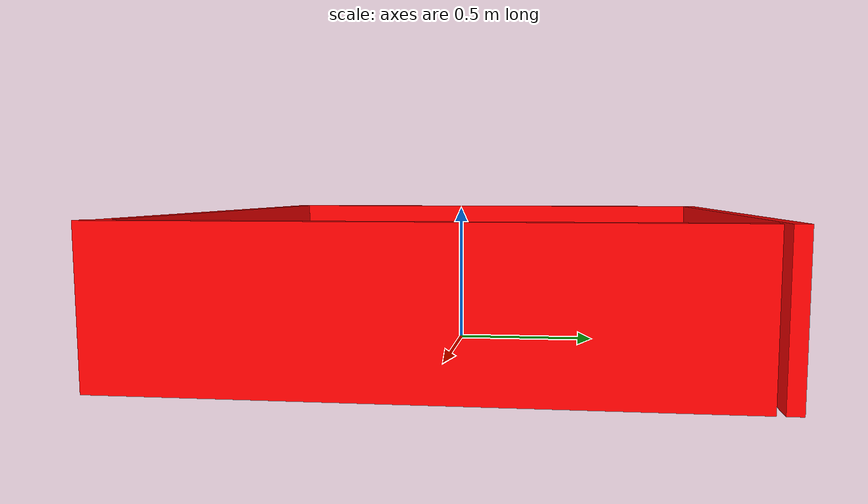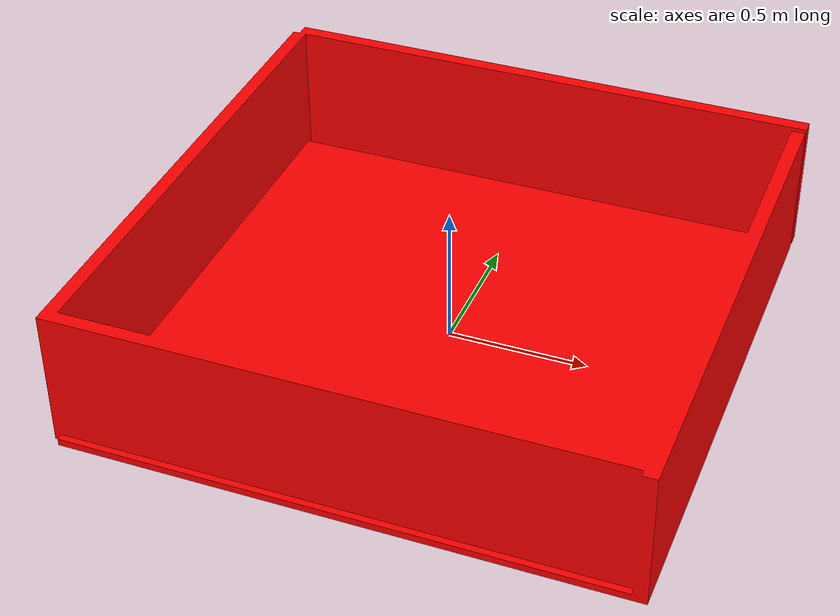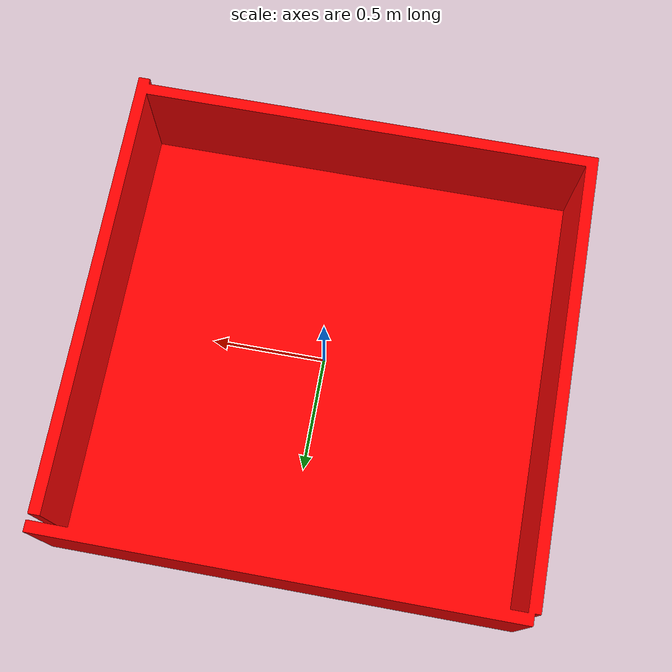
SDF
<?xml version="1.0"?>
<sdf version="1.6">
  <model name="red_square">
    <static>true</static>

    <link name="link">

      <!-- MESH -->
      <visual name="visual">
        <geometry>
          <mesh>
            <uri>model://red_square/meshes/square.stl</uri>
            <scale>0.5 0.5 0.5</scale>
          </mesh>
        </geometry>

        <!-- MATERIAL -->
        <material>
          <!-- Red on Ambient Lightning -->
          <ambient>1 0 0 1</ambient>
          <!-- Perfect Red on Camera -->
          <diffuse>1 0 0 1</diffuse>
          <!-- Prevents Reflections -->
          <specular>0 0 0 1</specular>
        </material>
      </visual>

      <!-- COLLISION -->
      <collision name="collision">
        <geometry>
          <cylinder>
            <radius>0.15</radius>
            <length>0.02</length>
          </cylinder>
        </geometry>
      </collision>

    </link>
  </model>
</sdf>
